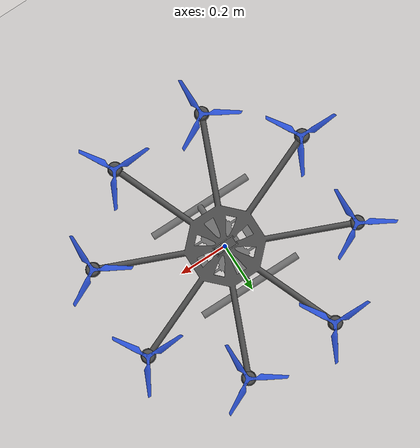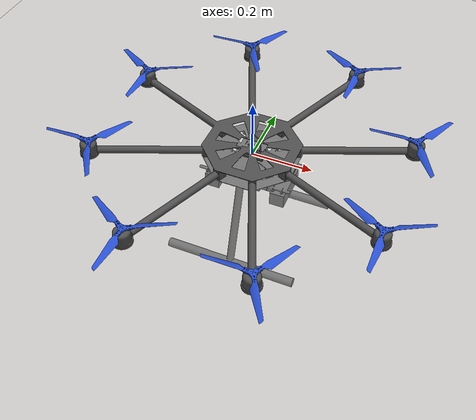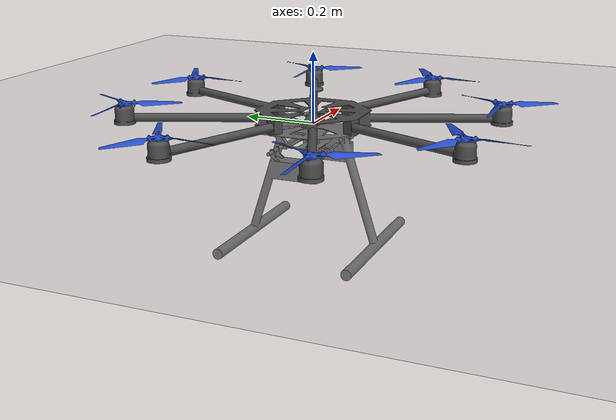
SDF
<?xml version="1.0" ?>
<sdf version="1.5">
  <world name="default">
    <!-- A global light source -->
    <include>
      <uri>model://sun</uri>
    </include>
    <!-- A ground plane -->
    <include>
      <uri>model://ground_plane</uri>
    </include>
    <include>
      <uri>model://tarot_t15</uri>
    </include>
    <physics name='default_physics' default='0' type='ode'>
      <gravity>0 0 -9.8066</gravity>
      <ode>
        <solver>
          <type>quick</type>
          <iters>50</iters>
          <sor>1.0</sor>
          <use_dynamic_moi_rescaling>0</use_dynamic_moi_rescaling>
        </solver>
        <constraints>
          <cfm>0</cfm>
          <erp>0.2</erp>
          <contact_max_correcting_vel>100</contact_max_correcting_vel>
          <contact_surface_layer>0.001</contact_surface_layer>
        </constraints>
      </ode>
      <max_step_size>0.004</max_step_size>
      <real_time_factor>1</real_time_factor>
      <real_time_update_rate>250</real_time_update_rate>
      <magnetic_field>6.0e-6 2.3e-5 -4.2e-5</magnetic_field>
    </physics>
  </world>
</sdf>

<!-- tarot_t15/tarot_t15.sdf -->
<sdf version="1.5">
  <model name="TAROT T15">

    <!-- BODY -->

    <link name="base_link">
      <pose>0 0 0 0 0 0</pose>
      <inertial>
        <pose>0 0 0 0 0 0</pose>
        <mass>10.57</mass> <!-- kg -->
        <inertia> <!-- kg.m^2 -->
          <ixx>0.7044</ixx>
          <ixy>0</ixy>
          <ixz>-0.0001</ixz>
          <iyy>0.6744</iyy>
          <iyz>0</iyz>
          <izz>1.0014</izz>
        </inertia>
      </inertial>

      <collision name='base_link_collision'>
        <pose>0 0 0.01 0 -0 0</pose>
        <geometry>
          <cylinder>
              <radius>0.18</radius>
              <length>0.075</length>
          </cylinder>
        </geometry>
        <surface>
          <contact>
            <ode>
              <min_depth>0.001</min_depth>
              <max_vel>0</max_vel>
            </ode>
          </contact>
          <friction>
            <ode/>
          </friction>
        </surface>
      </collision>

      <collision name='battery_collision'>
        <pose>0 0 -0.08 0 -0 0</pose>
        <geometry>
          <box>
            <size>0.32 0.18 0.11</size>
          </box>
        </geometry>
      </collision>

      <collision name='collision_gps'>
        <pose>0.025 0 0.07 0 0 0</pose>
        <geometry>
          <cylinder>
            <radius>0.02</radius>
            <length>0.06</length>
          </cylinder>
        </geometry>
      </collision>

      <collision name='collision_leg_left'>
        <pose>0 -0.188 -0.336 0 1.5707963267956893 0</pose>
        <geometry>
          <cylinder>
            <radius>0.016</radius>
            <length>0.46</length>
          </cylinder>
        </geometry>
      </collision>
      <collision name='collision_leg_bar_left'>
        <pose>0 -0.14 -0.19 -0.31 0 0</pose>
        <geometry>
          <cylinder>
            <radius>0.015</radius>
            <length>0.28</length>
          </cylinder>
        </geometry>
      </collision>

     <collision name='collision_leg_right'>
        <pose>0 0.188 -0.336 0 1.57079632679 0</pose>
        <geometry>
          <cylinder>
            <radius>0.016</radius>
            <length>0.46</length>
          </cylinder>
        </geometry>
      </collision>
      <collision name='collision_leg_bar_right'>
        <pose>0 0.14 -0.19 0.31 0 0</pose>
        <geometry>
          <cylinder>
            <radius>0.015</radius>
            <length>0.28</length>
          </cylinder>
        </geometry>
      </collision>

     <collision name='collision_arm0'>
        <pose>0.33 -0.14 0.02 0 0 -0.39</pose>
        <geometry>
          <box>
            <size>0.385 0.07 0.05</size>
          </box>
        </geometry>
      </collision>
     <collision name='collision_arm1'>
        <pose>-0.33 0.14 0.02 0 0 -0.39</pose>
        <geometry>
          <box>
            <size>0.39 0.07 0.05</size>
          </box>
        </geometry>
      </collision>
     <collision name='collision_arm2'>
        <pose>0.135 -0.33 0.02 0 0 -1.17</pose>
        <geometry>
          <box>
            <size>0.39 0.07 0.05</size>
          </box>
        </geometry>
      </collision>
     <collision name='collision_arm3'>
        <pose>-0.33 -0.14 0.02 0 0 0.39</pose>
        <geometry>
          <box>
            <size>0.39 0.07 0.05</size>
          </box>
        </geometry>
      </collision>
     <collision name='collision_arm4'>
        <pose>0.33 0.14 0.02 0 0 0.39</pose>
        <geometry>
          <box>
            <size>0.385 0.07 0.05</size>
          </box>
        </geometry>
      </collision>
     <collision name='collision_arm5'>
        <pose>-0.135 0.33 0.02 0 0 -1.17</pose>
        <geometry>
          <box>
            <size>0.4 0.07 0.05</size>
          </box>
        </geometry>
      </collision>
     <collision name='collision_arm6'>
        <pose>0.135 0.33 0.02 0 0 1.17</pose>
        <geometry>
          <box>
            <size>0.4 0.07 0.05</size>
          </box>
        </geometry>
      </collision>
     <collision name='collision_arm7'>
        <pose>-0.135 -0.33 0.02 0 0 1.17</pose>
        <geometry>
          <box>
            <size>0.4 0.07 0.05</size>
          </box>
        </geometry>
      </collision>

      <visual name='base_link_inertia_visual'>
        <pose>0 0 0 0 0 0</pose>
        <geometry>
          <mesh>
            <scale>1 1 1</scale>
            <uri>model://tarot_t15/meshes/tarot_t15_body.dae</uri>
          </mesh>
        </geometry>
        <material>
          <script>
            <name>Gazebo/DarkGrey</name>
            <uri>file://media/materials/scripts/gazebo.material</uri>
          </script>
        </material>
      </visual>
      <gravity>1</gravity>
      <velocity_decay/>
      <self_collide>0</self_collide>
    </link>

    <!-- LINKS -->

    <link name='imu_link'>
      <pose>0 0 0 0 0 0</pose>
      <inertial>
        <pose>0 0 0 0 -0 0</pose>
        <mass>0.015</mass>
        <inertia>
          <ixx>1e-05</ixx>
          <ixy>0</ixy>
          <ixz>0</ixz>
          <iyy>1e-05</iyy>
          <iyz>0</iyz>
          <izz>1e-05</izz>
        </inertia>
      </inertial>
    </link>

    <link name="rotor_0">
      <pose>0.48 -0.2 0.056 0 0 0</pose>
      <inertial>
        <pose>0 0 0 0 0 0</pose>
        <mass>0.05</mass>
        <inertia>
          <ixx>0.1008e-03</ixx>
          <ixy>0</ixy>
          <ixz>0</ixz>
          <iyy>0.1008e-03</iyy>
          <iyz>0</iyz>
          <izz>0.2007e-03</izz>
        </inertia>
      </inertial>

      <visual name='rotor_0_visual'>
        <pose>0 0 0 0 0 0</pose>
        <geometry>
          <mesh>
            <scale>1 1 1</scale>
            <uri>model://tarot_t15/meshes/KDE_cw_3b.dae</uri>
          </mesh>
        </geometry>
        <material>
          <script>
            <name>Gazebo/Blue</name>
            <uri>file://media/materials/scripts/gazebo.material</uri>
          </script>
          <ambient>1 0 0 1</ambient>
          <diffuse>1 0 0 1</diffuse>
          <specular>0.1 0.1 0.1 1</specular>
          <emissive>0 0 0 1</emissive>
          <shader type='vertex'>
            <normal_map>__default__</normal_map>
          </shader>
        </material>
      </visual>
      <gravity>1</gravity>
      <velocity_decay/>
      <self_collide>0</self_collide>

      <collision name="rotor_0_collision">
        <pose>0 0 0 0 0 0</pose>
        <geometry>
          <cylinder>
            <length>0.019</length>
            <radius>0.175</radius>
          </cylinder>
        </geometry>
        <surface>
          <contact>
            <ode/>
          </contact>
          <friction>
            <ode/>
          </friction>
        </surface>
      </collision>
    </link>

    <link name="rotor_1">
      <pose>-0.48 0.2 0.056 0 0 0</pose>
      <inertial>
        <pose>0 0 0 0 0 0</pose>
        <mass>0.05</mass>
        <inertia>
          <ixx>0.1008e-03</ixx>
          <ixy>0</ixy>
          <ixz>0</ixz>
          <iyy>0.1008e-03</iyy>
          <iyz>0</iyz>
          <izz>0.2007e-03</izz>
        </inertia>
      </inertial>
      <visual name='rotor_1_visual'>
        <pose>0 0 0 0 0 0</pose>
        <geometry>
          <mesh>
            <scale>1 1 1</scale>
            <uri>model://tarot_t15/meshes/KDE_cw_3b.dae</uri>
          </mesh>
        </geometry>
        <material>
          <script>
            <name>Gazebo/Blue</name>
            <uri>file://media/materials/scripts/gazebo.material</uri>
          </script>
        </material>
      </visual>
      <gravity>1</gravity>
      <velocity_decay/>
      <self_collide>0</self_collide>
      <collision name="rotor_1_collision">
        <pose>0 0 0 0 0 0</pose>
        <geometry>
          <cylinder>
            <length>0.019</length>
            <radius>0.175</radius>
          </cylinder>
        </geometry>
        <surface>
          <contact>
            <ode/>
          </contact>
          <friction>
            <ode/>
          </friction>
        </surface>
      </collision>
    </link>

    <link name="rotor_2">
      <pose>0.2 -0.48 0.056 0 0 0</pose>
      <inertial>
        <pose>0 0 0 0 0 0</pose>
        <mass>0.05</mass>
        <inertia>
          <ixx>0.1008e-03</ixx>
          <ixy>0</ixy>
          <ixz>0</ixz>
          <iyy>0.1008e-03</iyy>
          <iyz>0</iyz>
          <izz>0.2007e-03</izz>
        </inertia>
      </inertial>
      <visual name='rotor_2_visual'>
        <pose>0 0 0 0 0 0</pose>
        <geometry>
          <mesh>
            <scale>1 1 1</scale>
            <uri>model://tarot_t15/meshes/KDE_ccw_3b.dae</uri>
          </mesh>
        </geometry>
        <material>
          <script>
            <name>Gazebo/Blue</name>
            <uri>file://media/materials/scripts/gazebo.material</uri>
          </script>
        </material>
      </visual>
      <gravity>1</gravity>
      <velocity_decay/>
      <self_collide>0</self_collide>
      <collision name="rotor_2_collision">
        <pose>0 0 0 0 0 0</pose>
        <geometry>
          <cylinder>
            <length>0.019</length>
            <radius>0.175</radius>
          </cylinder>
        </geometry>
        <surface>
          <contact>
            <ode/>
          </contact>
          <friction>
            <ode/>
          </friction>
        </surface>
      </collision>
    </link>

    <link name="rotor_3">
      <pose>-0.48 -0.2 0.056 0 0 0</pose>
      <inertial>
        <pose>0 0 0 0 0 0</pose>
        <mass>0.05</mass>
        <inertia>
          <ixx>0.1008e-03</ixx>
          <ixy>0</ixy>
          <ixz>0</ixz>
          <iyy>0.1008e-03</iyy>
          <iyz>0</iyz>
          <izz>0.2007e-03</izz>
        </inertia>
      </inertial>
      <visual name='rotor_3_visual'>
        <pose>0 0 0 0 0 0</pose>
        <geometry>
          <mesh>
            <scale>1 1 1</scale>
            <uri>model://tarot_t15/meshes/KDE_ccw_3b.dae</uri>
          </mesh>
        </geometry>
        <material>
          <script>
            <name>Gazebo/Blue</name>
            <uri>file://media/materials/scripts/gazebo.material</uri>
          </script>
        </material>
      </visual>
      <gravity>1</gravity>
      <velocity_decay/>
      <self_collide>0</self_collide>
      <collision name="rotor_3_collision">
        <pose>0 0 0 0 0 0</pose>
        <geometry>
          <cylinder>
            <length>0.019</length>
            <radius>0.175</radius>
          </cylinder>
        </geometry>
        <surface>
          <contact>
            <ode/>
          </contact>
          <friction>
            <ode/>
          </friction>
        </surface>
      </collision>
    </link>

    <link name="rotor_4">
      <pose>0.48 0.2 0.056 0 0 0</pose>
      <inertial>
        <pose>0 0 0 0 0 0</pose>
        <mass>0.05</mass>
        <inertia>
          <ixx>0.1008e-03</ixx>
          <ixy>0</ixy>
          <ixz>0</ixz>
          <iyy>0.1008e-03</iyy>
          <iyz>0</iyz>
          <izz>0.2007e-03</izz>
        </inertia>
      </inertial>
      <visual name='rotor_4_visual'>
        <pose>0 0 0 0 0 0</pose>
        <geometry>
          <mesh>
            <scale>1 1 1</scale>
            <uri>model://tarot_t15/meshes/KDE_ccw_3b.dae</uri>
          </mesh>
        </geometry>
        <material>
          <script>
            <name>Gazebo/Blue</name>
            <uri>file://media/materials/scripts/gazebo.material</uri>
          </script>
          <ambient>1 0 0 1</ambient>
          <diffuse>1 0 0 1</diffuse>
          <specular>0.1 0.1 0.1 1</specular>
          <emissive>0 0 0 1</emissive>
          <shader type='vertex'>
            <normal_map>__default__</normal_map>
          </shader>
        </material>
      </visual>
      <gravity>1</gravity>
      <velocity_decay/>
      <self_collide>0</self_collide>
      <collision name="rotor_4_collision">
        <pose>0 0 0 0 0 0</pose>
        <geometry>
          <cylinder>
            <length>0.019</length>
            <radius>0.175</radius>
          </cylinder>
        </geometry>
        <surface>
          <contact>
            <ode/>
          </contact>
          <friction>
            <ode/>
          </friction>
        </surface>
      </collision>
    </link>

    <link name="rotor_5">
      <pose>-0.2 0.48 0.056 0 0 0</pose>
      <inertial>
        <pose>0 0 0 0 0 0</pose>
        <mass>0.05</mass>
        <inertia>
          <ixx>0.1008e-03</ixx>
          <ixy>0</ixy>
          <ixz>0</ixz>
          <iyy>0.1008e-03</iyy>
          <iyz>0</iyz>
          <izz>0.2007e-03</izz>
        </inertia>
      </inertial>
      <visual name='rotor_5_visual'>
        <pose>0 0 0 0 0 0</pose>
        <geometry>
          <mesh>
            <scale>1 1 1</scale>
            <uri>model://tarot_t15/meshes/KDE_ccw_3b.dae</uri>
          </mesh>
        </geometry>
        <material>
          <script>
            <name>Gazebo/Blue</name>
            <uri>file://media/materials/scripts/gazebo.material</uri>
          </script>
        </material>
      </visual>
      <gravity>1</gravity>
      <velocity_decay/>
      <self_collide>0</self_collide>
      <collision name="rotor_5_collision">
        <pose>0 0 0 0 0 0</pose>
        <geometry>
          <cylinder>
            <length>0.019</length>
            <radius>0.175</radius>
          </cylinder>
        </geometry>
        <surface>
          <contact>
            <ode/>
          </contact>
          <friction>
            <ode/>
          </friction>
        </surface>
      </collision>
    </link>

    <link name="rotor_6">
      <pose>0.2 0.48 0.056 0 0 0</pose>
      <inertial>
        <pose>0 0 0 0 0 0</pose>
        <mass>0.05</mass>
        <inertia>
          <ixx>0.1008e-03</ixx>
          <ixy>0</ixy>
          <ixz>0</ixz>
          <iyy>0.1008e-03</iyy>
          <iyz>0</iyz>
          <izz>0.2007e-03</izz>
        </inertia>
      </inertial>
      <visual name='rotor_6_visual'>
        <pose>0 0 0 0 0 0</pose>
        <geometry>
          <mesh>
            <scale>1 1 1</scale>
            <uri>model://tarot_t15/meshes/KDE_cw_3b.dae</uri>
          </mesh>
        </geometry>
        <material>
          <script>
            <name>Gazebo/Blue</name>
            <uri>file://media/materials/scripts/gazebo.material</uri>
          </script>
        </material>
      </visual>
      <gravity>1</gravity>
      <velocity_decay/>
      <self_collide>0</self_collide>
      <collision name="rotor_6_collision">
        <pose>0 0 0 0 0 0</pose>
        <geometry>
          <cylinder>
            <length>0.019</length>
            <radius>0.175</radius>
          </cylinder>
        </geometry>
        <surface>
          <contact>
            <ode/>
          </contact>
          <friction>
            <ode/>
          </friction>
        </surface>
      </collision>
    </link>

    <link name="rotor_7">
      <pose>-0.2 -0.48 0.056 0 0 0</pose>
      <inertial>
        <pose>0 0 0 0 0 0</pose>
        <mass>0.05</mass>
        <inertia>
          <ixx>0.1008e-03</ixx>
          <ixy>0</ixy>
          <ixz>0</ixz>
          <iyy>0.1008e-03</iyy>
          <iyz>0</iyz>
          <izz>0.2007e-03</izz>
        </inertia>
      </inertial>
      <visual name='rotor_7_visual'>
        <pose>0 0 0 0 0 0</pose>
        <geometry>
          <mesh>
            <scale>1 1 1</scale>
            <uri>model://tarot_t15/meshes/KDE_cw_3b.dae</uri>
          </mesh>
        </geometry>
        <material>
          <script>
            <name>Gazebo/Blue</name>
            <uri>file://media/materials/scripts/gazebo.material</uri>
          </script>
        </material>
      </visual>
      <gravity>1</gravity>
      <velocity_decay/>
      <self_collide>0</self_collide>
      <collision name="rotor_7_collision">
        <pose>0 0 0 0 0 0</pose>
        <geometry>
          <cylinder>
            <length>0.019</length>
            <radius>0.175</radius>
          </cylinder>
        </geometry>
        <surface>
          <contact>
            <ode/>
          </contact>
          <friction>
            <ode/>
          </friction>
        </surface>
      </collision>
    </link>

    <!-- JOINTS -->

    <joint name='imu_joint' type='revolute'>
      <child>imu_link</child>
      <parent>base_link</parent>
      <axis>
        <xyz>1 0 0</xyz>
        <limit>
          <lower>0</lower>
          <upper>0</upper>
          <effort>0</effort>
          <velocity>0</velocity>
        </limit>
        <dynamics>
          <spring_reference>0</spring_reference>
          <spring_stiffness>0</spring_stiffness>
        </dynamics>
        <use_parent_model_frame>1</use_parent_model_frame>
      </axis>
    </joint>

    <joint name='rotor_0_joint' type='revolute'>
      <parent>base_link</parent>
      <child>rotor_0</child>
      <axis>
        <xyz>0 0 1</xyz>
        <use_parent_model_frame>1</use_parent_model_frame>
        <limit>
          <lower>-1e+16</lower>
          <upper>1e+16</upper>
          <effort>10</effort>
          <velocity>-1</velocity>
        </limit>
        <dynamics>
          <damping>0.005</damping>
        </dynamics>
        <use_parent_model_frame>1</use_parent_model_frame>
      </axis>
      <physics>
        <ode>
          <implicit_spring_damper>1</implicit_spring_damper>
        </ode>
      </physics>
    </joint>

    <joint name='rotor_1_joint' type='revolute'>
      <parent>base_link</parent>
      <child>rotor_1</child>
      <axis>
        <xyz>0 0 1</xyz>
        <use_parent_model_frame>1</use_parent_model_frame>
        <limit>
          <lower>-1e+16</lower>
          <upper>1e+16</upper>
          <effort>10</effort>
          <velocity>-1</velocity>
        </limit>
        <dynamics>
          <damping>0.005</damping>
        </dynamics>
        <use_parent_model_frame>1</use_parent_model_frame>
      </axis>
      <physics>
        <ode>
          <implicit_spring_damper>1</implicit_spring_damper>
        </ode>
      </physics>
    </joint>

    <joint name='rotor_2_joint' type='revolute'>
      <parent>base_link</parent>
      <child>rotor_2</child>
      <axis>
        <xyz>0 0 1</xyz>
        <use_parent_model_frame>1</use_parent_model_frame>
        <limit>
          <lower>-1e+16</lower>
          <upper>1e+16</upper>
          <effort>10</effort>
          <velocity>-1</velocity>
        </limit>
        <dynamics>
          <damping>0.005</damping>
        </dynamics>
        <use_parent_model_frame>1</use_parent_model_frame>
      </axis>
      <physics>
        <ode>
          <implicit_spring_damper>1</implicit_spring_damper>
        </ode>
      </physics>
    </joint>

    <joint name='rotor_3_joint' type='revolute'>
      <parent>base_link</parent>
      <child>rotor_3</child>
      <axis>
        <xyz>0 0 1</xyz>
        <use_parent_model_frame>1</use_parent_model_frame>
        <limit>
          <lower>-1e+16</lower>
          <upper>1e+16</upper>
          <effort>10</effort>
          <velocity>-1</velocity>
        </limit>
        <dynamics>
          <damping>0.005</damping>
        </dynamics>
        <use_parent_model_frame>1</use_parent_model_frame>
      </axis>
      <physics>
        <ode>
          <implicit_spring_damper>1</implicit_spring_damper>
        </ode>
      </physics>
    </joint>

    <joint name='rotor_4_joint' type='revolute'>
      <parent>base_link</parent>
      <child>rotor_4</child>
      <axis>
        <xyz>0 0 1</xyz>
        <use_parent_model_frame>1</use_parent_model_frame>
        <limit>
          <lower>-1e+16</lower>
          <upper>1e+16</upper>
          <effort>10</effort>
          <velocity>-1</velocity>
        </limit>
        <dynamics>
          <damping>0.005</damping>
        </dynamics>
        <use_parent_model_frame>1</use_parent_model_frame>
      </axis>
      <physics>
        <ode>
          <implicit_spring_damper>1</implicit_spring_damper>
        </ode>
      </physics>
    </joint>

    <joint name='rotor_5_joint' type='revolute'>
      <parent>base_link</parent>
      <child>rotor_5</child>
      <axis>
        <xyz>0 0 1</xyz>
        <use_parent_model_frame>1</use_parent_model_frame>
        <limit>
          <lower>-1e+16</lower>
          <upper>1e+16</upper>
          <effort>10</effort>
          <velocity>-1</velocity>
        </limit>
        <dynamics>
          <damping>0.005</damping>
        </dynamics>
        <use_parent_model_frame>1</use_parent_model_frame>
      </axis>
      <physics>
        <ode>
          <implicit_spring_damper>1</implicit_spring_damper>
        </ode>
      </physics>
    </joint>

    <joint name='rotor_6_joint' type='revolute'>
      <parent>base_link</parent>
      <child>rotor_6</child>
      <axis>
        <xyz>0 0 1</xyz>
        <use_parent_model_frame>1</use_parent_model_frame>
        <limit>
          <lower>-1e+16</lower>
          <upper>1e+16</upper>
          <effort>10</effort>
          <velocity>-1</velocity>
        </limit>
        <dynamics>
          <damping>0.005</damping>
        </dynamics>
        <use_parent_model_frame>1</use_parent_model_frame>
      </axis>
      <physics>
        <ode>
          <implicit_spring_damper>1</implicit_spring_damper>
        </ode>
      </physics>
    </joint>

    <joint name='rotor_7_joint' type='revolute'>
      <parent>base_link</parent>
      <child>rotor_7</child>
      <axis>
        <xyz>0 0 1</xyz>
        <use_parent_model_frame>1</use_parent_model_frame>
        <limit>
          <lower>-1e+16</lower>
          <upper>1e+16</upper>
          <effort>10</effort>
          <velocity>-1</velocity>
        </limit>
        <dynamics>
          <damping>0.005</damping>
        </dynamics>
        <use_parent_model_frame>1</use_parent_model_frame>
      </axis>
      <physics>
        <ode>
          <implicit_spring_damper>1</implicit_spring_damper>
        </ode>
      </physics>
    </joint>

    <!-- PLUGIN -->

    <plugin name='rosbag' filename='libgazebo_multirotor_base_plugin.so'>
      <robotNamespace></robotNamespace>
      <linkName>base_link</linkName>
      <rotorVelocitySlowdownSim>10</rotorVelocitySlowdownSim>
    </plugin>

    <plugin name='motor_model_0' filename='libgazebo_motor_model.so'>
      <robotNamespace/>
      <jointName>rotor_0_joint</jointName>
      <linkName>rotor_0</linkName>
      <turningDirection>cw</turningDirection>
      <timeConstantUp>0.0125</timeConstantUp>
      <timeConstantDown>0.025</timeConstantDown>
      <maxRotVelocity>1122.59</maxRotVelocity>
      <motorConstant>2.18e-05</motorConstant>
      <momentConstant>0.06</momentConstant>
      <commandSubTopic>/gazebo/command/motor_speed</commandSubTopic>
      <motorNumber>0</motorNumber>
      <rotorDragCoefficient>0.000806428</rotorDragCoefficient>
      <rollingMomentCoefficient>1e-06</rollingMomentCoefficient>
      <motorSpeedPubTopic>/motor_speed/0</motorSpeedPubTopic>
      <rotorVelocitySlowdownSim>10</rotorVelocitySlowdownSim>
    </plugin>

    <plugin name='motor_model_1' filename='libgazebo_motor_model.so'>
      <robotNamespace/>
      <jointName>rotor_1_joint</jointName>
      <linkName>rotor_1</linkName>
      <turningDirection>cw</turningDirection>
      <timeConstantUp>0.0125</timeConstantUp>
      <timeConstantDown>0.025</timeConstantDown>
      <maxRotVelocity>1122.59</maxRotVelocity>
      <motorConstant>2.18e-05</motorConstant>
      <momentConstant>0.06</momentConstant>
      <commandSubTopic>/gazebo/command/motor_speed</commandSubTopic>
      <motorNumber>1</motorNumber>
      <rotorDragCoefficient>0.000806428</rotorDragCoefficient>
      <rollingMomentCoefficient>1e-06</rollingMomentCoefficient>
      <motorSpeedPubTopic>/motor_speed/1</motorSpeedPubTopic>
      <rotorVelocitySlowdownSim>10</rotorVelocitySlowdownSim>
    </plugin>

    <plugin name='motor_model_2' filename='libgazebo_motor_model.so'>
      <robotNamespace/>
      <jointName>rotor_2_joint</jointName>
      <linkName>rotor_2</linkName>
      <turningDirection>ccw</turningDirection>
      <timeConstantUp>0.0125</timeConstantUp>
      <timeConstantDown>0.025</timeConstantDown>
      <maxRotVelocity>1122.59</maxRotVelocity>
      <motorConstant>2.18e-05</motorConstant>
      <momentConstant>0.06</momentConstant>
      <commandSubTopic>/gazebo/command/motor_speed</commandSubTopic>
      <motorNumber>2</motorNumber>
      <rotorDragCoefficient>0.000806428</rotorDragCoefficient>
      <rollingMomentCoefficient>1e-06</rollingMomentCoefficient>
      <motorSpeedPubTopic>/motor_speed/2</motorSpeedPubTopic>
      <rotorVelocitySlowdownSim>10</rotorVelocitySlowdownSim>
    </plugin>

    <plugin name='motor_model_3' filename='libgazebo_motor_model.so'>
      <robotNamespace/>
      <jointName>rotor_3_joint</jointName>
      <linkName>rotor_3</linkName>
      <turningDirection>ccw</turningDirection>
      <timeConstantUp>0.0125</timeConstantUp>
      <timeConstantDown>0.025</timeConstantDown>
      <maxRotVelocity>1122.59</maxRotVelocity>
      <motorConstant>2.18e-05</motorConstant>
      <momentConstant>0.06</momentConstant>
      <commandSubTopic>/gazebo/command/motor_speed</commandSubTopic>
      <motorNumber>3</motorNumber>
      <rotorDragCoefficient>0.000806428</rotorDragCoefficient>
      <rollingMomentCoefficient>1e-06</rollingMomentCoefficient>
      <motorSpeedPubTopic>/motor_speed/3</motorSpeedPubTopic>
      <rotorVelocitySlowdownSim>10</rotorVelocitySlowdownSim>
    </plugin>

    <plugin name='motor_model_4' filename='libgazebo_motor_model.so'>
      <robotNamespace/>
      <jointName>rotor_4_joint</jointName>
      <linkName>rotor_4</linkName>
      <turningDirection>ccw</turningDirection>
      <timeConstantUp>0.0125</timeConstantUp>
      <timeConstantDown>0.025</timeConstantDown>
      <maxRotVelocity>1122.59</maxRotVelocity>
      <motorConstant>2.18e-05</motorConstant>
      <momentConstant>0.06</momentConstant>
      <commandSubTopic>/gazebo/command/motor_speed</commandSubTopic>
      <motorNumber>4</motorNumber>
      <rotorDragCoefficient>0.000806428</rotorDragCoefficient>
      <rollingMomentCoefficient>1e-06</rollingMomentCoefficient>
      <motorSpeedPubTopic>/motor_speed/4</motorSpeedPubTopic>
      <rotorVelocitySlowdownSim>10</rotorVelocitySlowdownSim>
    </plugin>

    <plugin name='motor_model_5' filename='libgazebo_motor_model.so'>
      <robotNamespace/>
      <jointName>rotor_5_joint</jointName>
      <linkName>rotor_5</linkName>
      <turningDirection>ccw</turningDirection>
      <timeConstantUp>0.0125</timeConstantUp>
      <timeConstantDown>0.025</timeConstantDown>
      <maxRotVelocity>1122.59</maxRotVelocity>
      <motorConstant>2.18e-05</motorConstant>
      <momentConstant>0.06</momentConstant>
      <commandSubTopic>/gazebo/command/motor_speed</commandSubTopic>
      <motorNumber>5</motorNumber>
      <rotorDragCoefficient>0.000806428</rotorDragCoefficient>
      <rollingMomentCoefficient>1e-06</rollingMomentCoefficient>
      <motorSpeedPubTopic>/motor_speed/5</motorSpeedPubTopic>
      <rotorVelocitySlowdownSim>10</rotorVelocitySlowdownSim>
    </plugin>

    <plugin name='motor_model_6' filename='libgazebo_motor_model.so'>
      <robotNamespace/>
      <jointName>rotor_6_joint</jointName>
      <linkName>rotor_6</linkName>
      <turningDirection>cw</turningDirection>
      <timeConstantUp>0.0125</timeConstantUp>
      <timeConstantDown>0.025</timeConstantDown>
      <maxRotVelocity>1122.59</maxRotVelocity>
      <motorConstant>2.18e-05</motorConstant>
      <momentConstant>0.06</momentConstant>
      <commandSubTopic>/gazebo/command/motor_speed</commandSubTopic>
      <motorNumber>6</motorNumber>
      <rotorDragCoefficient>0.000806428</rotorDragCoefficient>
      <rollingMomentCoefficient>1e-06</rollingMomentCoefficient>
      <motorSpeedPubTopic>/motor_speed/6</motorSpeedPubTopic>
      <rotorVelocitySlowdownSim>10</rotorVelocitySlowdownSim>
    </plugin>

    <plugin name='motor_model_7' filename='libgazebo_motor_model.so'>
      <robotNamespace/>
      <jointName>rotor_7_joint</jointName>
      <linkName>rotor_7</linkName>
      <turningDirection>cw</turningDirection>
      <timeConstantUp>0.0125</timeConstantUp>
      <timeConstantDown>0.025</timeConstantDown>
      <maxRotVelocity>1122.59</maxRotVelocity>
      <motorConstant>2.18e-05</motorConstant>
      <momentConstant>0.06</momentConstant>
      <commandSubTopic>/gazebo/command/motor_speed</commandSubTopic>
      <motorNumber>7</motorNumber>
      <rotorDragCoefficient>0.000806428</rotorDragCoefficient>
      <rollingMomentCoefficient>1e-06</rollingMomentCoefficient>
      <motorSpeedPubTopic>/motor_speed/7</motorSpeedPubTopic>
      <rotorVelocitySlowdownSim>10</rotorVelocitySlowdownSim>
    </plugin>

    <plugin name='gps_plugin' filename='libgazebo_gps_plugin.so'>
      <robotNamespace/>
      <gpsNoise>true</gpsNoise>
    </plugin>

    <plugin name='magnetometer_plugin' filename='libgazebo_magnetometer_plugin.so'>
      <robotNamespace/>
      <pubRate>20</pubRate>
      <noiseDensity>0.0004</noiseDensity>
      <randomWalk>6.4e-06</randomWalk>
      <biasCorrelationTime>600</biasCorrelationTime>
      <magTopic>/mag</magTopic>
    </plugin>

    <plugin name='barometer_plugin' filename='libgazebo_barometer_plugin.so'>
      <robotNamespace/>
      <pubRate>10</pubRate>
      <baroTopic>/baro</baroTopic>
    </plugin>

    <plugin name='mavlink_interface' filename='libgazebo_mavlink_interface.so'>
      <robotNamespace/>
      <imuSubTopic>/imu</imuSubTopic>
      <gpsSubTopic>/gps</gpsSubTopic>
      <magSubTopic>/mag</magSubTopic>
      <baroSubTopic>/baro</baroSubTopic>
      <mavlink_addr>INADDR_ANY</mavlink_addr>
      <mavlink_udp_port>14560</mavlink_udp_port>
      <serialEnabled>false</serialEnabled>
      <serialDevice>/dev/ttyACM0</serialDevice>
      <baudRate>921600</baudRate>
      <qgc_addr>INADDR_ANY</qgc_addr>
      <qgc_udp_port>14550</qgc_udp_port>
      <hil_mode>false</hil_mode>
      <hil_state_level>false</hil_state_level>
      <enable_lockstep>true</enable_lockstep>
      <use_tcp>true</use_tcp>
      <motorSpeedCommandPubTopic>/gazebo/command/motor_speed</motorSpeedCommandPubTopic>
      <control_channels>

        <channel name='rotor1'>
          <input_index>0</input_index>
          <input_offset>0</input_offset>
          <input_scaling>1000</input_scaling>
          <zero_position_disarmed>0</zero_position_disarmed>
          <zero_position_armed>100</zero_position_armed>
          <joint_control_type>velocity</joint_control_type>
          <joint_name>rotor_0_joint</joint_name>
        </channel>

        <channel name='rotor2'>
          <input_index>1</input_index>
          <input_offset>0</input_offset>
          <input_scaling>1000</input_scaling>
          <zero_position_disarmed>0</zero_position_disarmed>
          <zero_position_armed>100</zero_position_armed>
          <joint_control_type>velocity</joint_control_type>
          <joint_name>rotor_1_joint</joint_name>
        </channel>

        <channel name='rotor3'>
          <input_index>2</input_index>
          <input_offset>0</input_offset>
          <input_scaling>1000</input_scaling>
          <zero_position_disarmed>0</zero_position_disarmed>
          <zero_position_armed>100</zero_position_armed>
          <joint_control_type>velocity</joint_control_type>
          <joint_name>rotor_2_joint</joint_name>
        </channel>

        <channel name='rotor4'>
          <input_index>3</input_index>
          <input_offset>0</input_offset>
          <input_scaling>1000</input_scaling>
          <zero_position_disarmed>0</zero_position_disarmed>
          <zero_position_armed>100</zero_position_armed>
          <joint_control_type>velocity</joint_control_type>
          <joint_name>rotor_3_joint</joint_name>
        </channel>

        <channel name='rotor5'>
          <input_index>4</input_index>
          <input_offset>0</input_offset>
          <input_scaling>1000</input_scaling>
          <zero_position_disarmed>0</zero_position_disarmed>
          <zero_position_armed>100</zero_position_armed>
          <joint_control_type>velocity</joint_control_type>
          <joint_name>rotor_4_joint</joint_name>
        </channel>

        <channel name='rotor6'>
          <input_index>5</input_index>
          <input_offset>0</input_offset>
          <input_scaling>1000</input_scaling>
          <zero_position_disarmed>0</zero_position_disarmed>
          <zero_position_armed>100</zero_position_armed>
          <joint_control_type>velocity</joint_control_type>
          <joint_name>rotor_5_joint</joint_name>
        </channel>

        <channel name='rotor7'>
          <input_index>6</input_index>
          <input_offset>0</input_offset>
          <input_scaling>1000</input_scaling>
          <zero_position_disarmed>0</zero_position_disarmed>
          <zero_position_armed>100</zero_position_armed>
          <joint_control_type>velocity</joint_control_type>
          <joint_name>rotor_6_joint</joint_name>
        </channel>

        <channel name='rotor8'>
          <input_index>7</input_index>
          <input_offset>0</input_offset>
          <input_scaling>1000</input_scaling>
          <zero_position_disarmed>0</zero_position_disarmed>
          <zero_position_armed>100</zero_position_armed>
          <joint_control_type>velocity</joint_control_type>
          <joint_name>rotor_7_joint</joint_name>
        </channel>
      </control_channels>
    </plugin>

    <plugin name='rotors_gazebo_imu_plugin' filename='libgazebo_imu_plugin.so'>
      <robotNamespace/>
      <linkName>imu_link</linkName>
      <imuTopic>/imu</imuTopic>
      <gyroscopeNoiseDensity>0.0003394</gyroscopeNoiseDensity>
      <gyroscopeRandomWalk>3.8785e-05</gyroscopeRandomWalk>
      <gyroscopeBiasCorrelationTime>1000.0</gyroscopeBiasCorrelationTime>
      <gyroscopeTurnOnBiasSigma>0.0087</gyroscopeTurnOnBiasSigma>
      <accelerometerNoiseDensity>0.004</accelerometerNoiseDensity>
      <accelerometerRandomWalk>0.006</accelerometerRandomWalk>
      <accelerometerBiasCorrelationTime>300.0</accelerometerBiasCorrelationTime>
      <accelerometerTurnOnBiasSigma>0.196</accelerometerTurnOnBiasSigma>
    </plugin>

  </model>
</sdf>
